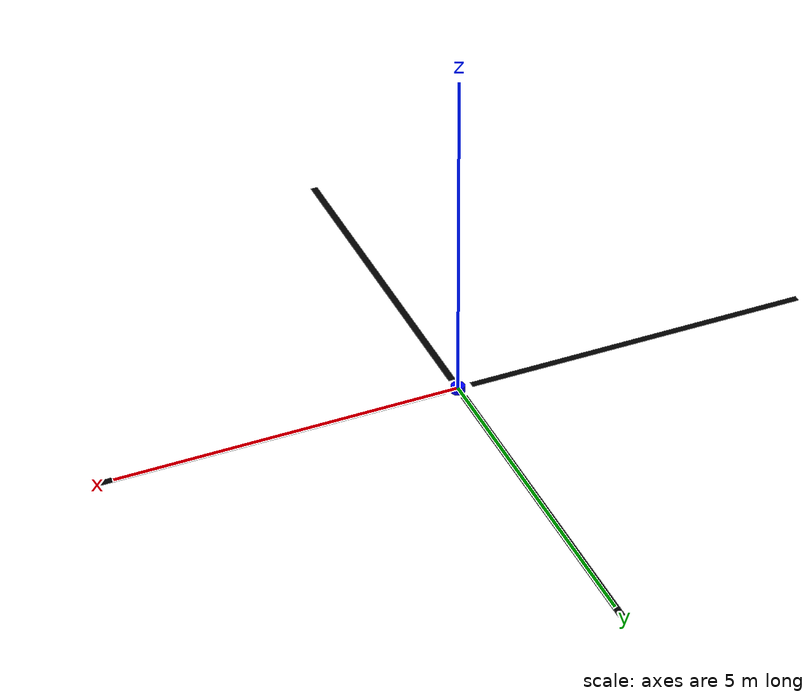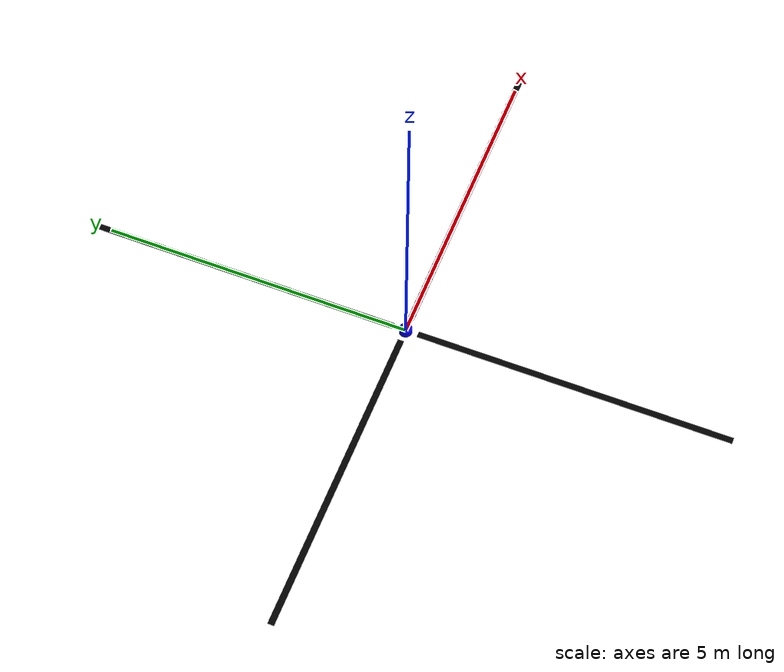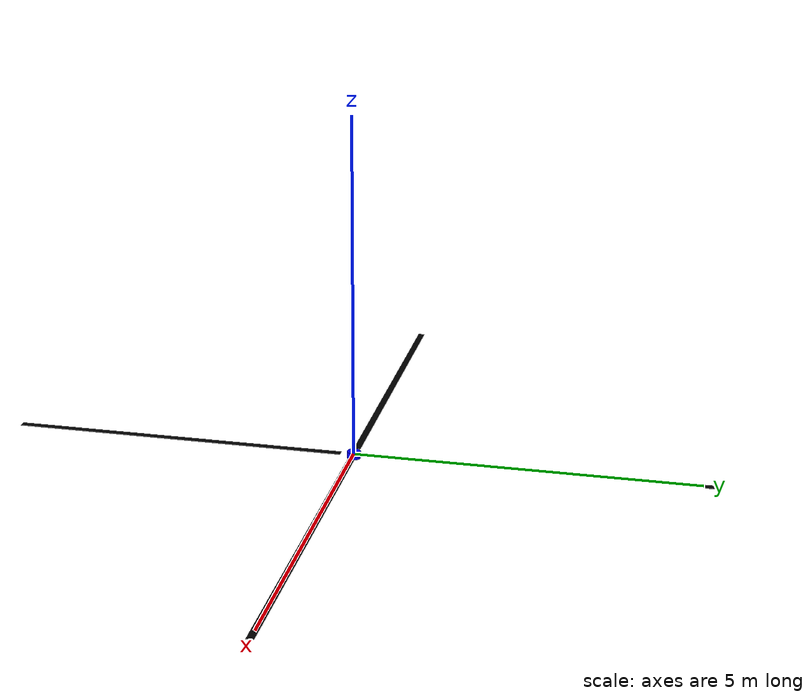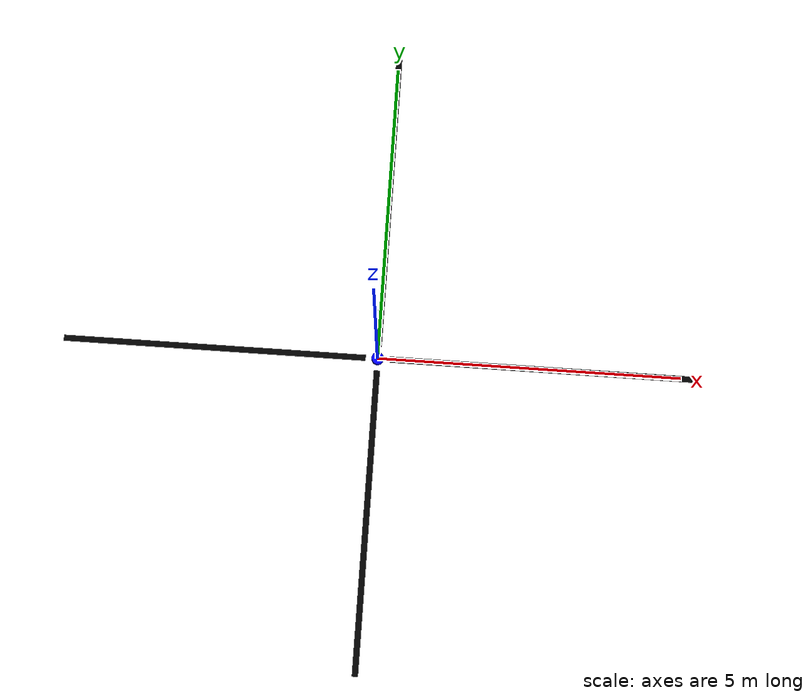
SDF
<?xml version='1.0'?>
<sdf version='1.6'>
  <world name='VDPTagEnvironment'>

    <gravity>0 0 -9.8</gravity>
    <magnetic_field>6e-06 2.3e-05 -4.2e-05</magnetic_field>
    <atmosphere type='adiabatic'/>
    <physics name='default_physics' default='0' type='ode'>
      <max_step_size>0.05</max_step_size>
      <real_time_factor>1</real_time_factor>
      <real_time_update_rate>1000</real_time_update_rate>
    </physics>
    <scene>
      <ambient>0.4 0.4 0.4 1</ambient>
      <background>0.7 0.7 0.7 1</background>
      <shadows>1</shadows>
    </scene>

  <model name="Agent">
   <pose frame=''>0 0 0 0 0 0</pose>
   <static>1</static>
   <link name="AgentLink">
     <visual name="visual">
        <geometry>
          <cylinder>
            <radius>0.1</radius>
            <length>0.1</length>
          </cylinder>
        </geometry>
        <material>
          <ambient>0 0 1 1.0</ambient>
        </material>
      </visual>
      <collision name="collision">
        <geometry>
          <cylinder>
            <radius>0.1</radius>
            <length>0.1</length>
          </cylinder>
        </geometry>
      </collision>
    </link>
  </model>

  <model name="Target">
   <pose frame=''>0 0 0 0 0 0</pose>
   <static>1</static>
   <link name="TargetLink">
     <visual name="visual">
        <geometry>
          <cylinder>
            <radius>0.1</radius>
            <length>0.1</length>
          </cylinder>
        </geometry>
        <material>
          <ambient>1 0 0 1.0</ambient>
        </material>
      </visual>
    </link>
  </model>

  <model name="obstacleNorth">
      <pose frame=''>2.7 0.0 0.0 0 0 0</pose>
      <static>1</static>
      <link name="link">
      <visual name="visual">
        <geometry>
          <box>
            <size>5.0 0.1 0.005</size>
          </box>
        </geometry>
        <material>
            <ambient>0 0 0 1.0</ambient>
          </material>
      </visual>
    </link>
  </model>

  <model name="obstacleSouth">
      <pose frame=''>-2.7 0.0 0.0 0 0 0</pose>
      <static>1</static>
      <link name="link">
      <visual name="visual">
        <geometry>
          <box>
            <size>5.0 0.1 0.005</size>
          </box>
        </geometry>
        <material>
            <ambient>0 0 0 1.0</ambient>
          </material>
      </visual>
    </link>
  </model>

  <model name="obstacleEast">
      <pose frame=''>0.0 2.7 0.0 0 0 0</pose>
      <static>1</static>
      <link name="link">
      <visual name="visual">
        <geometry>
          <box>
            <size>0.1 5.0 0.005</size>
          </box>
        </geometry>
        <material>
            <ambient>0 0 0 1.0</ambient>
          </material>
      </visual>
    </link>
  </model>

  <model name="obstacleWest">
      <pose frame=''>0.0 -2.7 0.0 0 0 0</pose>
      <static>1</static>
      <link name="link">
      <visual name="visual">
        <geometry>
          <box>
            <size>0.1 5.0 0.005</size>
          </box>
        </geometry>
        <material>
            <ambient>0 0 0 1.0</ambient>
          </material>
      </visual>
    </link>
  </model>

<light name='user_point_light_0' type='point'>
      <pose frame=''>-1.75276 -1.33719 1 0 -0 0</pose>
      <diffuse>0.5 0.5 0.5 1</diffuse>
      <specular>0.1 0.1 0.1 1</specular>
      <attenuation>
        <range>20</range>
        <constant>0.5</constant>
        <linear>0.01</linear>
        <quadratic>0.001</quadratic>
      </attenuation>
      <cast_shadows>0</cast_shadows>
      <direction>0 0 -1</direction>
    </light>
</world>
</sdf>
